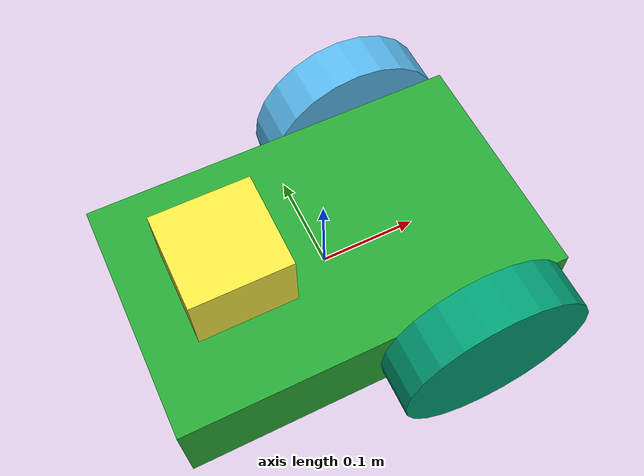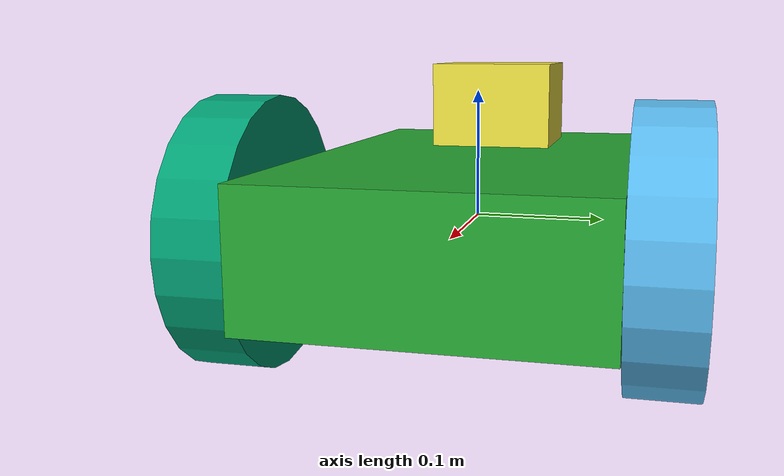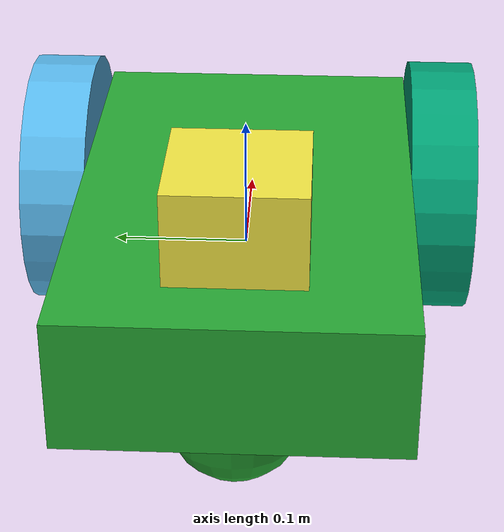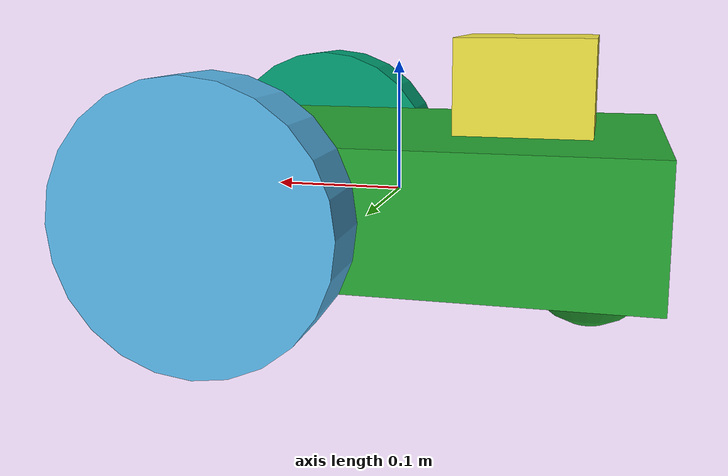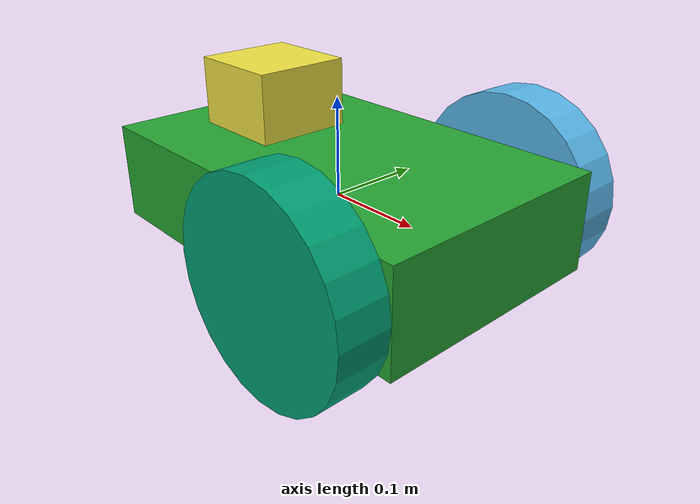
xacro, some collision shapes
<?xml version='1.0'?>

<robot name="ricky" xmlns:xacro="http://www.ros.org/wiki/xacro">

  <xacro:include filename="$(find ricky_description)/urdf/ricky.gazebo"/>
  <xacro:include filename="$(find ricky_description)/urdf/materials.xacro"/>
  <xacro:include filename="$(find ricky_description)/urdf/macros.xacro"/>

  <link name='chassis'>
    <pose>0 0 0.1 0 0 0</pose>

    <inertial>
      <mass value="15.0"/>
      <origin xyz="0.0 0 0.0" rpy=" 0 0 0"/>
      <inertia
          ixx="0.5" ixy="0" ixz="0"
          iyy="1.0" iyz="0"
          izz="0.1"
      />
    </inertial>

    <collision name='collision'>
      <geometry>
        <box size=".4 .25 .1"/>
      </geometry>
    </collision>

    <visual name='chassis_visual'>
      <origin xyz="0 0 0" rpy=" 0 0 0"/>
      <geometry>
        <box size=".4 .25 .1"/>
      </geometry>
    </visual>

    <collision name='caster_collision'>
      <origin xyz="-0.15 0 -0.05" rpy=" 0 0 0"/>
      <geometry>
        <sphere radius="0.05"/>
      </geometry>
      <surface>
        <friction>
          <ode>
            <mu>0.15</mu>
            <mu2>0.15</mu2>
            <slip1>0.5</slip1>
            <slip2>0.5</slip2>
          </ode>
        </friction>
      </surface>
    </collision>

    <visual name='caster_visual'>
      <origin xyz="-0.15 0 -0.05" rpy=" 0 0 0"/>
      <geometry>
        <sphere radius="0.05"/>
      </geometry>
    </visual>
  </link>

  <link name="left_wheel">
    <collision name="collision">
      <origin xyz="0 0 0" rpy="0 1.5707 1.5707"/>
      <geometry>
        <cylinder radius="0.1" length="0.05"/>
      </geometry>
    </collision>
    <visual name="left_wheel_visual">
      <origin xyz="0 0 0" rpy="0 1.5707 1.5707"/>
      <geometry>
        <cylinder radius="0.1" length="0.05"/>
      </geometry>
    </visual>
    <inertial>
      <origin xyz="0 0 0" rpy="0 1.5707 1.5707"/>
      <mass value="5"/>
      <cylinder_inertia m="5" r="0.1" h="0.05"/>
      <inertia
        ixx="1.0" ixy="0.0" ixz="0.0"
        iyy="1.0" iyz="0.0"
        izz="1.0"/>
    </inertial>
  </link>

  <link name="right_wheel">
    <origin xyz="0.1 -0.13 0.1" rpy="0 1.5707 1.5707"/>
    <collision name="collision">
      <origin xyz="0 0 0" rpy="0 1.5707 1.5707"/>
      <geometry>
        <cylinder radius="0.1" length="0.05"/>
      </geometry>
    </collision>
    <visual name="right_wheel_visual">
      <origin xyz="0 0 0" rpy="0 1.5707 1.5707"/>
      <geometry>
        <cylinder radius="0.1" length="0.05"/>
      </geometry>
    </visual>
    <inertial>
      <origin xyz="0 0 0" rpy="0 1.5707 1.5707"/>
      <mass value="5"/>
      <cylinder_inertia m="5" r="0.1" h="0.05"/>
      <inertia
        ixx="1.0" ixy="0.0" ixz="0.0"
        iyy="1.0" iyz="0.0"
        izz="1.0"/>
    </inertial>
  </link>

  <joint type="continuous" name="left_wheel_hinge">
    <origin xyz="0.1 0.15 0" rpy="0 0 0"/>
    <child link="left_wheel"/>
    <parent link="chassis"/>
    <axis xyz="0 1 0" rpy="0 0 0"/>
    <limit effort="100" velocity="100"/>
    <joint_properties damping="0.0" friction="0.0"/>
  </joint>

  <joint type="continuous" name="right_wheel_hinge">
    <origin xyz="0.1 -0.15 0" rpy="0 0 0"/>
    <child link="right_wheel"/>
    <parent link="chassis"/>
    <axis xyz="0 1 0" rpy="0 0 0"/>
    <limit effort="100" velocity="100"/>
    <joint_properties damping="0.0" friction="0.0"/>
  </joint>

<!--Hokuyo Laser Scanner-->
<!--link name="base_link"/-->

  <link name="stereo_link">

    <collision>
      <origin xyz="0 0 0" rpy="0 0 0"/>
      <geometry>
    <box size="0.1 0.1 0.1"/>
      </geometry>
    </collision>

    <visual>
      <origin xyz="0 0 0" rpy="0 0 0"/>
      <geometry>
        <mesh filename="package://ricky_description/models/hokuyo.dae" scale="1 3 1"/> <!-- for convenience used hokuyo's mesh file-->
      </geometry>
    </visual>

    <inertial>
      <mass value="1e-5" />
      <origin xyz="0 0 0" rpy="0 0 0"/>
      <inertia ixx="1e-6" ixy="0" ixz="0" iyy="1e-6" iyz="0" izz="1e-6" />
    </inertial>
  </link>

  <joint name="stereo_joint" type="fixed">
    <axis xyz="0 1 0"/>
    <origin xyz="-0.1 0 ${0.01+0.01+0.05}" rpy="0 0 0"/>
    <parent link="chassis"/>
    <child link="stereo_link"/>
  </joint>

  <!-- hokuyo plugin-->

<!-- Stereo Camera plugin-->
<gazebo reference="stereo_link">
    <sensor name="camera" type="multicamera">
      <update_rate>30.0</update_rate>
      <camera name="left">
        <horizontal_fov>1.3962634</horizontal_fov>
        <image>
          <width>800</width>
          <height>800</height>
          <format>R8G8B8</format>
        </image>
        <clip>
          <near>0.02</near>
          <far>300</far>
        </clip>
        <noise>
          <type>gaussian</type>
          <mean>0.0</mean>
          <stddev>0.007</stddev>
        </noise>
      </camera>

      <camera name="right">
        <pose>0 -0.07 0 0 0 0</pose>
        <horizontal_fov>1.3962634</horizontal_fov>
        <image>
          <width>800</width>
          <height>800</height>
          <format>R8G8B8</format>
        </image>
        <clip>
          <near>0.02</near>
          <far>300</far>
        </clip>
        <noise>
          <type>gaussian</type>
          <mean>0.0</mean>
          <stddev>0.007</stddev>
        </noise>
      </camera>
      <plugin name="camera_controller" filename="libgazebo_ros_multicamera.so">
        <alwaysOn>true</alwaysOn>
        <updateRate>20.0</updateRate>
        <leftCamera>left</leftCamera>
        <rightCamera>right</rightCamera>
        <imageTopicName>image_raw</imageTopicName>
        <cameraInfoTopicName>camera_info</cameraInfoTopicName>
        <frameName>camera</frameName>
        <hackBaseline>0.07</hackBaseline>
        <distortionK1>0.0</distortionK1>
        <distortionK2>0.0</distortionK2>
        <distortionK3>0.0</distortionK3>
        <distortionT1>0.0</distortionT1>
        <distortionT2>0.0</distortionT2>
      </plugin>

    </sensor>
  </gazebo>

   <plugin filename="libgazebo_ros_joint_state_publisher.so" name="joint_state_publisher">
      <jointName>left_wheel_hinge,right_wheel_hinge</jointName>
      <updateRate>10.0</updateRate>
      <alwaysOn>true</alwaysOn>
    </plugin>
    <plugin name="gazebo_ros_control" filename="libgazebo_ros_contol.so"/>

  <gazebo reference="chassis">
      <material>Gazebo/Green</material>
    </gazebo>

</robot>

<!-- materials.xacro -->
<robot>

  <material name="blue">
    <color rgba="0.0 0.0 0.8 1.0"/>
  </material>

  <material name="green">
    <color rgba="0.0 0.8 0.0 1.0"/>
  </material>

  <material name="grey">
    <color rgba="0.2 0.2 0.2 1.0"/>
  </material>

  <material name="orange">
    <color rgba="${255/255} ${108/255} ${10/255} 1.0"/>
  </material>

    <material name="red">
    <color rgba="0.8 0.0 0.0 1.0"/>
  </material>

  <material name="white">
    <color rgba="1.0 1.0 1.0 1.0"/>
  </material>

	<material name="light_grey">
      <color rgba="0.6 0.6 0.6 1"/>
  </material>

  <material name="dark_grey">
      <color rgba="0.3 0.3 0.3 1"/>
  </material>

	<material name="brown">
	  <color rgba="${222/255} ${207/255} ${195/255} 1.0"/>
	</material>

</robot>
